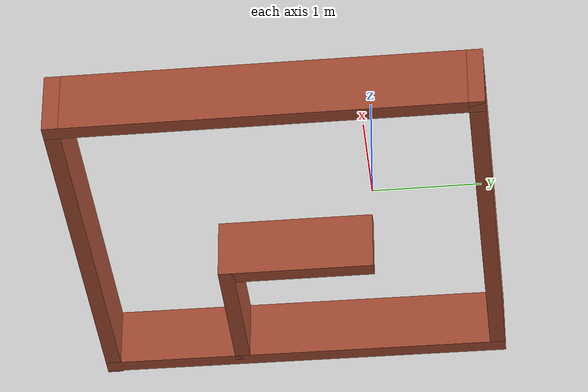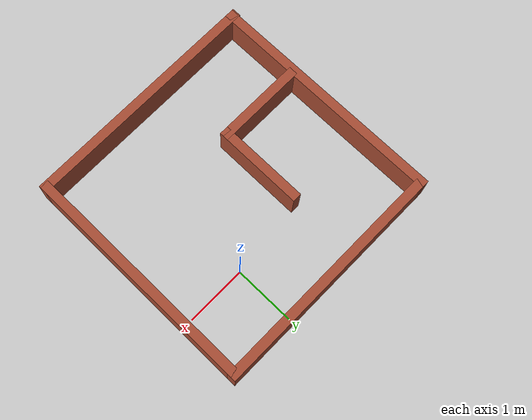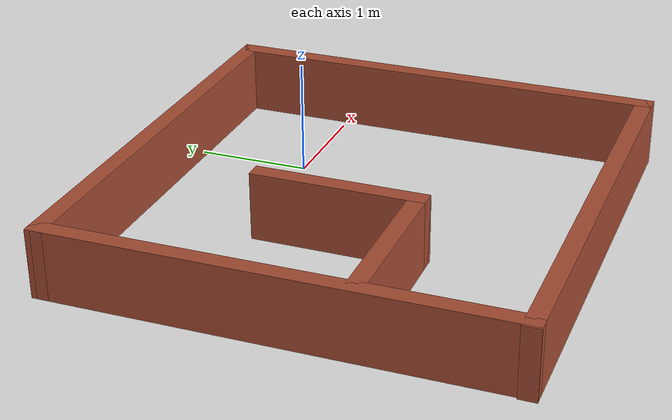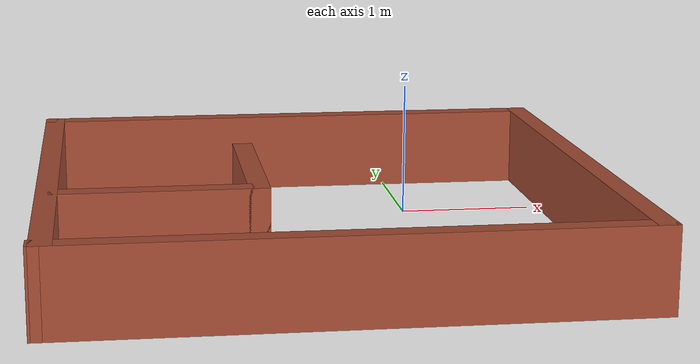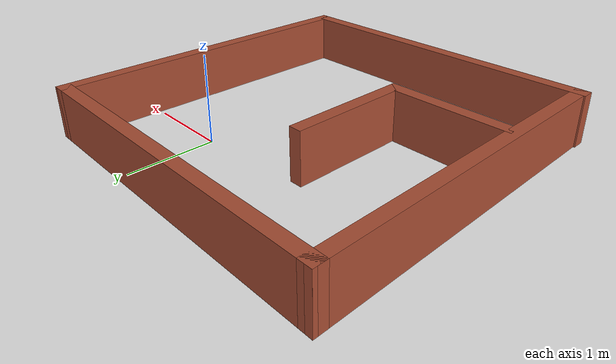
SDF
<?xml version='1.0'?>
<sdf version='1.6'>
  <model name='cogrob'>
    <pose frame=''>-0.782602 -0.895 0 0 -0 0</pose>
    <link name='Wall_0'>
      <collision name='Wall_0_Collision'>
        <geometry>
          <box>
            <size>4.03527 0.15 0.6</size>
          </box>
        </geometry>
        <pose frame=''>0 0 0.3 0 -0 0</pose>
      </collision>
      <visual name='Wall_0_Visual'>
        <pose frame=''>0 0 0.3 0 -0 0</pose>
        <geometry>
          <box>
            <size>4.03527 0.15 0.6</size>
          </box>
        </geometry>
        <material>
          <script>
            <uri>file://media/materials/scripts/gazebo.material</uri>
            <name>Gazebo/Bricks</name>
          </script>
          <ambient>1 1 1 1</ambient>
        </material>
        <meta>
          <layer>0</layer>
        </meta>
      </visual>
      <pose frame=''>-3.1e-05 -1.925 0 0 -0 3.14159</pose>
    </link>
    <link name='Wall_1'>
      <collision name='Wall_1_Collision'>
        <geometry>
          <box>
            <size>4 0.15 0.6</size>
          </box>
        </geometry>
        <pose frame=''>0 0 0.3 0 -0 0</pose>
      </collision>
      <visual name='Wall_1_Visual'>
        <pose frame=''>0 0 0.3 0 -0 0</pose>
        <geometry>
          <box>
            <size>4 0.15 0.6</size>
          </box>
        </geometry>
        <material>
          <script>
            <uri>file://media/materials/scripts/gazebo.material</uri>
            <name>Gazebo/Bricks</name>
          </script>
          <ambient>1 1 1 1</ambient>
        </material>
        <meta>
          <layer>0</layer>
        </meta>
      </visual>
      <pose frame=''>-1.93372 0 0 0 -0 1.57531</pose>
    </link>
    <link name='Wall_3'>
      <collision name='Wall_3_Collision'>
        <geometry>
          <box>
            <size>4.03527 0.15 0.6</size>
          </box>
        </geometry>
        <pose frame=''>0 0 0.3 0 -0 0</pose>
      </collision>
      <visual name='Wall_3_Visual'>
        <pose frame=''>0 0 0.3 0 -0 0</pose>
        <geometry>
          <box>
            <size>4.03527 0.15 0.6</size>
          </box>
        </geometry>
        <material>
          <script>
            <uri>file://media/materials/scripts/gazebo.material</uri>
            <name>Gazebo/Bricks</name>
          </script>
          <ambient>1 1 1 1</ambient>
        </material>
        <meta>
          <layer>0</layer>
        </meta>
      </visual>
      <pose frame=''>0.000102 1.925 0 0 -0 0</pose>
    </link>
    <link name='Wall_4'>
      <collision name='Wall_4_Collision'>
        <geometry>
          <box>
            <size>4 0.15 0.6</size>
          </box>
        </geometry>
        <pose frame=''>0 0 0.3 0 -0 0</pose>
      </collision>
      <visual name='Wall_4_Visual'>
        <pose frame=''>0 0 0.3 0 -0 0</pose>
        <geometry>
          <box>
            <size>4 0.15 0.6</size>
          </box>
        </geometry>
        <material>
          <script>
            <uri>file://media/materials/scripts/gazebo.material</uri>
            <name>Gazebo/Bricks</name>
          </script>
          <ambient>1 1 1 1</ambient>
        </material>
        <meta>
          <layer>0</layer>
        </meta>
      </visual>
      <pose frame=''>1.9426 0 0 0 0 -1.5708</pose>
    </link>
    <link name='Wall_6'>
      <collision name='Wall_6_Collision'>
        <geometry>
          <box>
            <size>1.5 0.15 0.6</size>
          </box>
        </geometry>
        <pose frame=''>0 0 0.3 0 -0 0</pose>
      </collision>
      <visual name='Wall_6_Visual'>
        <pose frame=''>0 0 0.3 0 -0 0</pose>
        <geometry>
          <box>
            <size>1.5 0.15 0.6</size>
          </box>
        </geometry>
        <material>
          <script>
            <uri>file://media/materials/scripts/gazebo.material</uri>
            <name>Gazebo/Bricks</name>
          </script>
          <ambient>1 1 1 1</ambient>
        </material>
        <meta>
          <layer>0</layer>
        </meta>
      </visual>
      <pose frame=''>-1.1694 -0.621 0 0 -0 0</pose>
    </link>
    <link name='Wall_7'>
      <collision name='Wall_7_Collision'>
        <geometry>
          <box>
            <size>1.5 0.15 0.6</size>
          </box>
        </geometry>
        <pose frame=''>0 0 0.3 0 -0 0</pose>
      </collision>
      <visual name='Wall_7_Visual'>
        <pose frame=''>0 0 0.3 0 -0 0</pose>
        <geometry>
          <box>
            <size>1.5 0.15 0.6</size>
          </box>
        </geometry>
        <material>
          <script>
            <uri>file://media/materials/scripts/gazebo.material</uri>
            <name>Gazebo/Bricks</name>
          </script>
          <ambient>1 1 1 1</ambient>
        </material>
        <meta>
          <layer>0</layer>
        </meta>
      </visual>
      <pose frame=''>-0.494398 0.054 0 0 -0 1.5708</pose>
    </link>
    <static>1</static>
  </model>
</sdf>
